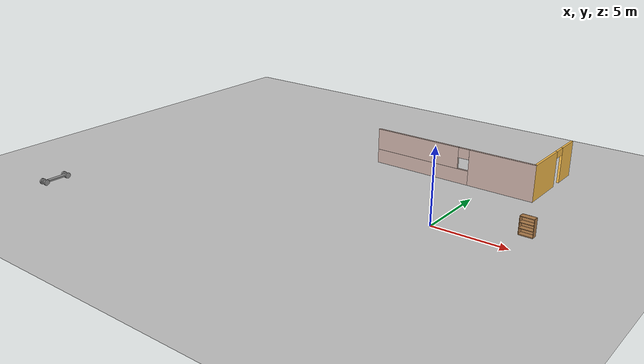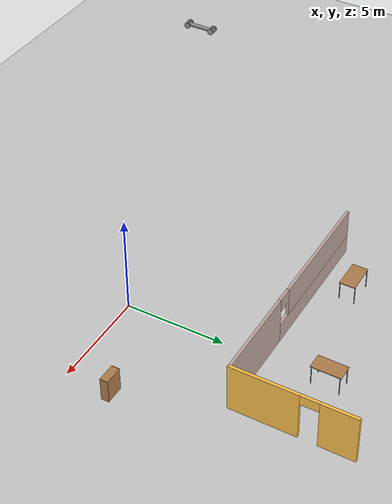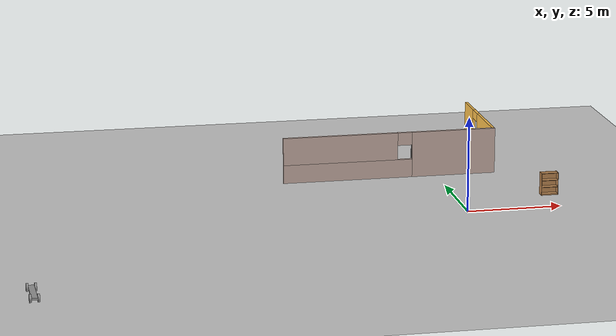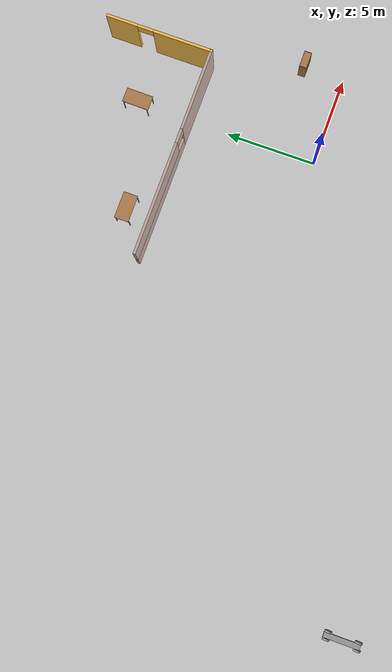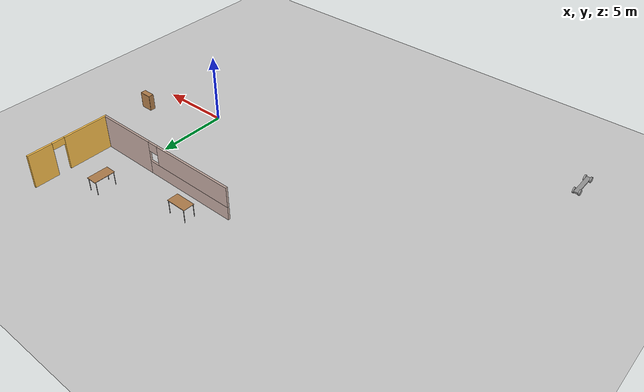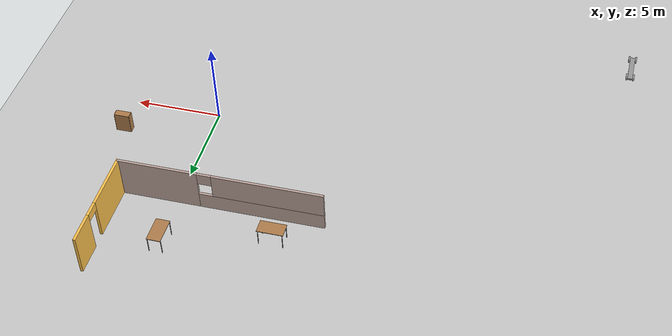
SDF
<sdf version="1.6">
 <world name="default">
  <model name="ground_plane">
   <static>1</static>
   <link name="link">
    <collision name="collision">
     <geometry><plane><normal>0 0 1</normal><size>100 100</size></plane></geometry>
     <surface>
      <contact><collide_bitmask>65535</collide_bitmask></contact>
      <friction><ode><mu>100</mu><mu2>50</mu2></ode></friction>
     </surface>
    </collision>
    <visual name="visual">
     <cast_shadows>0</cast_shadows>
     <geometry><plane><normal>0 0 1</normal><size>100 100</size></plane></geometry>
     <material>
      <script><uri>file://media/materials/scripts/gazebo.material</uri><name>Gazebo/Grey</name></script>
     </material>
    </visual>
   </link>
  </model>
  <model name="bookshelf">
   <static>1</static>
   <link name="link">
    <inertial><mass>1</mass></inertial>
    <collision name="back">
     <pose>0 0.005 0.6 0 -0 0</pose>
     <geometry><box><size>0.9 0.01 1.2</size></box></geometry>
    </collision>
    <visual name="visual1">
     <pose>0 0.005 0.6 0 -0 0</pose>
     <geometry><box><size>0.9 0.01 1.2</size></box></geometry>
     <material>
      <script><uri>file://media/materials/scripts/gazebo.material</uri><name>Gazebo/Wood</name></script>
     </material>
    </visual>
    <collision name="left_side">
     <pose>0.45 -0.195 0.6 0 -0 0</pose>
     <geometry><box><size>0.02 0.4 1.2</size></box></geometry>
    </collision>
    <visual name="visual2">
     <pose>0.45 -0.195 0.6 0 -0 0</pose>
     <geometry><box><size>0.02 0.4 1.2</size></box></geometry>
     <material>
      <script><uri>file://media/materials/scripts/gazebo.material</uri><name>Gazebo/Wood</name></script>
     </material>
    </visual>
    <collision name="right_side">
     <pose>-0.45 -0.195 0.6 0 -0 0</pose>
     <geometry><box><size>0.02 0.4 1.2</size></box></geometry>
    </collision>
    <visual name="visual3">
     <pose>-0.45 -0.195 0.6 0 -0 0</pose>
     <geometry><box><size>0.02 0.4 1.2</size></box></geometry>
     <material>
      <script><uri>file://media/materials/scripts/gazebo.material</uri><name>Gazebo/Wood</name></script>
     </material>
    </visual>
    <collision name="bottom">
     <pose>0 -0.195 0.03 0 -0 0</pose>
     <geometry><box><size>0.88 0.4 0.06</size></box></geometry>
    </collision>
    <visual name="visual4">
     <pose>0 -0.195 0.03 0 -0 0</pose>
     <geometry><box><size>0.88 0.4 0.06</size></box></geometry>
     <material>
      <script><uri>file://media/materials/scripts/gazebo.material</uri><name>Gazebo/Wood</name></script>
     </material>
    </visual>
    <collision name="top">
     <pose>0 -0.195 1.19 0 -0 0</pose>
     <geometry><box><size>0.88 0.4 0.02</size></box></geometry>
    </collision>
    <visual name="visual5">
     <pose>0 -0.195 1.19 0 -0 0</pose>
     <geometry><box><size>0.88 0.4 0.02</size></box></geometry>
     <material>
      <script><uri>file://media/materials/scripts/gazebo.material</uri><name>Gazebo/Wood</name></script>
     </material>
    </visual>
    <collision name="low_shelf">
     <pose>0 -0.195 0.43 0 -0 0</pose>
     <geometry><box><size>0.88 0.4 0.02</size></box></geometry>
    </collision>
    <visual name="visual6">
     <pose>0 -0.195 0.43 0 -0 0</pose>
     <geometry><box><size>0.88 0.4 0.02</size></box></geometry>
     <material>
      <script><uri>file://media/materials/scripts/gazebo.material</uri><name>Gazebo/Wood</name></script>
     </material>
    </visual>
    <collision name="high_shelf">
     <pose>0 -0.195 0.8 0 -0 0</pose>
     <geometry><box><size>0.88 0.4 0.02</size></box></geometry>
    </collision>
    <visual name="visual7">
     <pose>0 -0.195 0.8 0 -0 0</pose>
     <geometry><box><size>0.88 0.4 0.02</size></box></geometry>
     <material>
      <script><uri>file://media/materials/scripts/gazebo.material</uri><name>Gazebo/Wood</name></script>
     </material>
    </visual>
   </link>
   <pose>5.01452 2.49473 0 0 -0 0</pose>
  </model>
  <model name="office">
   <pose>-7.49516 -7.8361 0 0 -0 0</pose>
   <link name="Wall_134">
    <pose>10.7078 17.8581 0 0 -0 1.5708</pose>
    <visual name="Wall_134_Visual_0">
     <pose>-1.33185 0 1.25 0 -0 0</pose>
     <geometry><box><size>3.3363 0.15 2.5</size></box></geometry>
     <material>
      <script><uri>file://media/materials/scripts/gazebo.material</uri><name>Gazebo/Grey</name></script>
      <ambient>1 0.764706 0.305882 1</ambient>
     </material>
     <meta><layer>0</layer></meta>
    </visual>
    <collision name="Wall_134_Collision_0">
     <geometry><box><size>3.3363 0.15 2.5</size></box></geometry>
     <pose>-1.33185 0 1.25 0 -0 0</pose>
    </collision>
    <visual name="Wall_134_Visual_1">
     <pose>2.11815 0 1.25 0 -0 0</pose>
     <geometry><box><size>1.7637 0.15 2.5</size></box></geometry>
     <material>
      <script><uri>file://media/materials/scripts/gazebo.material</uri><name>Gazebo/Grey</name></script>
      <ambient>1 0.764706 0.305882 1</ambient>
     </material>
     <meta><layer>0</layer></meta>
    </visual>
    <collision name="Wall_134_Collision_1">
     <geometry><box><size>1.7637 0.15 2.5</size></box></geometry>
     <pose>2.11815 0 1.25 0 -0 0</pose>
    </collision>
    <visual name="Wall_134_Visual_2">
     <pose>0.786298 0 2.25 0 -0 0</pose>
     <geometry><box><size>0.9 0.15 0.5</size></box></geometry>
     <material>
      <script><uri>file://media/materials/scripts/gazebo.material</uri><name>Gazebo/Grey</name></script>
      <ambient>1 0.764706 0.305882 1</ambient>
     </material>
     <meta><layer>0</layer></meta>
    </visual>
    <collision name="Wall_134_Collision_2">
     <geometry><box><size>0.9 0.15 0.5</size></box></geometry>
     <pose>0.786298 0 2.25 0 -0 0</pose>
    </collision>
   </link>
   <link name="Wall_227">
    <pose>4.90779 14.9331 0 0 -0 3.14159</pose>
    <visual name="Wall_227_Visual_0">
     <pose>-3.55762 0 1.25 0 -0 0</pose>
     <geometry><box><size>4.63476 0.15 2.5</size></box></geometry>
     <material>
      <script><uri>file://media/materials/scripts/gazebo.material</uri><name>Gazebo/Grey</name></script>
      <ambient>0.760784 0.662745 0.627451 1</ambient>
     </material>
     <meta><layer>0</layer></meta>
    </visual>
    <collision name="Wall_227_Collision_0">
     <geometry><box><size>4.63476 0.15 2.5</size></box></geometry>
     <pose>-3.55762 0 1.25 0 -0 0</pose>
    </collision>
    <visual name="Wall_227_Visual_1">
     <pose>2.31738 0 0.5 0 -0 0</pose>
     <geometry><box><size>7.11524 0.15 1</size></box></geometry>
     <material>
      <script><uri>file://media/materials/scripts/gazebo.material</uri><name>Gazebo/Grey</name></script>
      <ambient>0.760784 0.662745 0.627451 1</ambient>
     </material>
     <meta><layer>0</layer></meta>
    </visual>
    <collision name="Wall_227_Collision_1">
     <geometry><box><size>7.11524 0.15 1</size></box></geometry>
     <pose>2.31738 0 0.5 0 -0 0</pose>
    </collision>
    <visual name="Wall_227_Visual_2">
     <pose>2.71738 0 1.75 0 -0 0</pose>
     <geometry><box><size>6.31524 0.15 1.5</size></box></geometry>
     <material>
      <script><uri>file://media/materials/scripts/gazebo.material</uri><name>Gazebo/Grey</name></script>
      <ambient>0.760784 0.662745 0.627451 1</ambient>
     </material>
     <meta><layer>0</layer></meta>
    </visual>
    <collision name="Wall_227_Collision_2">
     <geometry><box><size>6.31524 0.15 1.5</size></box></geometry>
     <pose>2.71738 0 1.75 0 -0 0</pose>
    </collision>
    <visual name="Wall_227_Visual_3">
     <pose>-0.840238 0 2.15 0 -0 0</pose>
     <geometry><box><size>0.8 0.15 0.7</size></box></geometry>
     <material>
      <script><uri>file://media/materials/scripts/gazebo.material</uri><name>Gazebo/Grey</name></script>
      <ambient>0.760784 0.662745 0.627451 1</ambient>
     </material>
     <meta><layer>0</layer></meta>
    </visual>
    <collision name="Wall_227_Collision_3">
     <geometry><box><size>0.8 0.15 0.7</size></box></geometry>
     <pose>-0.840238 0 2.15 0 -0 0</pose>
    </collision>
   </link>
   <static>1</static>
  </model>
  <model name="table_9">
   <static>1</static>
   <link name="link">
    <collision name="surface">
     <pose>0 0 1 0 -0 0</pose>
     <geometry><box><size>1.5 0.8 0.03</size></box></geometry>
     <surface><friction><ode><mu>0.6</mu><mu2>0.6</mu2></ode></friction></surface>
    </collision>
    <visual name="visual1">
     <pose>0 0 1 0 -0 0</pose>
     <geometry><box><size>1.5 0.8 0.03</size></box></geometry>
     <material>
      <script><uri>file://media/materials/scripts/gazebo.material</uri><name>Gazebo/Wood</name></script>
     </material>
    </visual>
    <collision name="front_left_leg">
     <pose>0.68 0.38 0.5 0 -0 0</pose>
     <geometry><cylinder><radius>0.02</radius><length>1</length></cylinder></geometry>
    </collision>
    <visual name="front_left_leg">
     <pose>0.68 0.38 0.5 0 -0 0</pose>
     <geometry><cylinder><radius>0.02</radius><length>1</length></cylinder></geometry>
     <material>
      <script><uri>file://media/materials/scripts/gazebo.material</uri><name>Gazebo/Grey</name></script>
     </material>
    </visual>
    <collision name="front_right_leg">
     <pose>0.68 -0.38 0.5 0 -0 0</pose>
     <geometry><cylinder><radius>0.02</radius><length>1</length></cylinder></geometry>
    </collision>
    <visual name="front_right_leg">
     <pose>0.68 -0.38 0.5 0 -0 0</pose>
     <geometry><cylinder><radius>0.02</radius><length>1</length></cylinder></geometry>
     <material>
      <script><uri>file://media/materials/scripts/gazebo.material</uri><name>Gazebo/Grey</name></script>
     </material>
    </visual>
    <collision name="back_right_leg">
     <pose>-0.68 -0.38 0.5 0 -0 0</pose>
     <geometry><cylinder><radius>0.02</radius><length>1</length></cylinder></geometry>
    </collision>
    <visual name="back_right_leg">
     <pose>-0.68 -0.38 0.5 0 -0 0</pose>
     <geometry><cylinder><radius>0.02</radius><length>1</length></cylinder></geometry>
     <material>
      <script><uri>file://media/materials/scripts/gazebo.material</uri><name>Gazebo/Grey</name></script>
     </material>
    </visual>
    <collision name="back_left_leg">
     <pose>-0.68 0.38 0.5 0 -0 0</pose>
     <geometry><cylinder><radius>0.02</radius><length>1</length></cylinder></geometry>
    </collision>
    <visual name="back_left_leg">
     <pose>-0.68 0.38 0.5 0 -0 0</pose>
     <geometry><cylinder><radius>0.02</radius><length>1</length></cylinder></geometry>
     <material>
      <script><uri>file://media/materials/scripts/gazebo.material</uri><name>Gazebo/Grey</name></script>
     </material>
    </visual>
   </link>
   <pose>-5.95431 8.66269 0 0 -0 0</pose>
  </model>
  <model name="table_10">
   <static>1</static>
   <link name="link">
    <collision name="surface">
     <pose>0 0 1 0 -0 0</pose>
     <geometry><box><size>1.5 0.8 0.03</size></box></geometry>
     <surface><friction><ode><mu>0.6</mu><mu2>0.6</mu2></ode></friction></surface>
    </collision>
    <visual name="visual1">
     <pose>0 0 1 0 -0 0</pose>
     <geometry><box><size>1.5 0.8 0.03</size></box></geometry>
     <material>
      <script><uri>file://media/materials/scripts/gazebo.material</uri><name>Gazebo/Wood</name></script>
     </material>
    </visual>
    <collision name="front_left_leg">
     <pose>0.68 0.38 0.5 0 -0 0</pose>
     <geometry><cylinder><radius>0.02</radius><length>1</length></cylinder></geometry>
    </collision>
    <visual name="front_left_leg">
     <pose>0.68 0.38 0.5 0 -0 0</pose>
     <geometry><cylinder><radius>0.02</radius><length>1</length></cylinder></geometry>
     <material>
      <script><uri>file://media/materials/scripts/gazebo.material</uri><name>Gazebo/Grey</name></script>
     </material>
    </visual>
    <collision name="front_right_leg">
     <pose>0.68 -0.38 0.5 0 -0 0</pose>
     <geometry><cylinder><radius>0.02</radius><length>1</length></cylinder></geometry>
    </collision>
    <visual name="front_right_leg">
     <pose>0.68 -0.38 0.5 0 -0 0</pose>
     <geometry><cylinder><radius>0.02</radius><length>1</length></cylinder></geometry>
     <material>
      <script><uri>file://media/materials/scripts/gazebo.material</uri><name>Gazebo/Grey</name></script>
     </material>
    </visual>
    <collision name="back_right_leg">
     <pose>-0.68 -0.38 0.5 0 -0 0</pose>
     <geometry><cylinder><radius>0.02</radius><length>1</length></cylinder></geometry>
    </collision>
    <visual name="back_right_leg">
     <pose>-0.68 -0.38 0.5 0 -0 0</pose>
     <geometry><cylinder><radius>0.02</radius><length>1</length></cylinder></geometry>
     <material>
      <script><uri>file://media/materials/scripts/gazebo.material</uri><name>Gazebo/Grey</name></script>
     </material>
    </visual>
    <collision name="back_left_leg">
     <pose>-0.68 0.38 0.5 0 -0 0</pose>
     <geometry><cylinder><radius>0.02</radius><length>1</length></cylinder></geometry>
    </collision>
    <visual name="back_left_leg">
     <pose>-0.68 0.38 0.5 0 -0 0</pose>
     <geometry><cylinder><radius>0.02</radius><length>1</length></cylinder></geometry>
     <material>
      <script><uri>file://media/materials/scripts/gazebo.material</uri><name>Gazebo/Grey</name></script>
     </material>
    </visual>
   </link>
   <pose>-0.111237 10.182 0 0 0 -1.58092</pose>
  </model>
  <model name="myrobot">
   <link name="link_0">
    <pose>-20.1793 -31.7509 0.74 0 -0 0</pose>
    <inertial>
     <mass>1</mass>
     <inertia>
      <ixx>0.166667</ixx>
      <ixy>0</ixy>
      <ixz>0</ixz>
      <iyy>0.166667</iyy>
      <iyz>0</iyz>
      <izz>0.166667</izz>
     </inertia>
    </inertial>
    <visual name="visual">
     <pose>0 0 -0.3 0 -0 0</pose>
     <geometry><box><size>0.3 2 0.1</size></box></geometry>
     <material>
      <lighting>1</lighting>
      <script><uri>file://media/materials/scripts/gazebo.material</uri><name>Gazebo/Grey</name></script>
      <shader type="pixel"><normal_map>__default__</normal_map></shader>
      <ambient>0.3 0.3 0.3 1</ambient>
      <diffuse>0.7 0.7 0.7 1</diffuse>
      <specular>0.01 0.01 0.01 1</specular>
      <emissive>0 0 0 1</emissive>
     </material>
    </visual>
    <collision name="collision">
     <pose>0 0 -0.3 0 -0 0</pose>
     <geometry><box><size>0.3 2 0.1</size></box></geometry>
     <surface>
      <friction>
       <ode><mu>1</mu><mu2>1</mu2><fdir1>0 0 0</fdir1><slip1>0</slip1><slip2>0</slip2></ode>
       <torsional>
        <coefficient>1</coefficient>
        <patch_radius>0</patch_radius>
        <surface_radius>0</surface_radius>
        <use_patch_radius>1</use_patch_radius>
        <ode><slip>0</slip></ode>
       </torsional>
      </friction>
      <bounce><restitution_coefficient>0</restitution_coefficient><threshold>1e+06</threshold></bounce>
      <contact>
       <collide_without_contact>0</collide_without_contact>
       <collide_without_contact_bitmask>1</collide_without_contact_bitmask>
       <collide_bitmask>1</collide_bitmask>
       <ode>
        <soft_cfm>0</soft_cfm>
        <soft_erp>0.2</soft_erp>
        <kp>1e+13</kp>
        <kd>1</kd>
        <max_vel>0.01</max_vel>
        <min_depth>0</min_depth>
       </ode>
       <bullet>
        <split_impulse>1</split_impulse>
        <split_impulse_penetration_threshold>-0.01</split_impulse_penetration_threshold>
        <soft_cfm>0</soft_cfm>
        <soft_erp>0.2</soft_erp>
        <kp>1e+13</kp>
        <kd>1</kd>
       </bullet>
      </contact>
     </surface>
    </collision>
   </link>
   <link name="link_1">
    <pose>-20.3793 -30.9528 0.44 1.5707 0 1.5707</pose>
    <inertial>
     <mass>1</mass>
     <inertia><ixx>0.145833</ixx><ixy>0</ixy><ixz>0</ixz><iyy>0.145833</iyy><iyz>0</iyz><izz>0.125</izz></inertia>
    </inertial>
    <visual name="visual">
     <geometry><cylinder><radius>0.2</radius><length>0.1</length></cylinder></geometry>
     <material>
      <lighting>1</lighting>
      <script><uri>file://media/materials/scripts/gazebo.material</uri><name>Gazebo/Grey</name></script>
      <shader type="pixel"><normal_map>__default__</normal_map></shader>
      <ambient>0.3 0.3 0.3 1</ambient>
      <diffuse>0.7 0.7 0.7 1</diffuse>
      <specular>0.01 0.01 0.01 1</specular>
      <emissive>0 0 0 1</emissive>
     </material>
    </visual>
    <collision name="collision">
     <geometry><cylinder><radius>0.2</radius><length>0.1</length></cylinder></geometry>
     <surface>
      <friction>
       <ode><mu>1</mu><mu2>1</mu2><fdir1>0 0 0</fdir1><slip1>0</slip1><slip2>0</slip2></ode>
       <torsional>
        <coefficient>1</coefficient>
        <patch_radius>0</patch_radius>
        <surface_radius>0</surface_radius>
        <use_patch_radius>1</use_patch_radius>
        <ode><slip>0</slip></ode>
       </torsional>
      </friction>
      <bounce><restitution_coefficient>0</restitution_coefficient><threshold>1e+06</threshold></bounce>
      <contact>
       <collide_without_contact>0</collide_without_contact>
       <collide_without_contact_bitmask>1</collide_without_contact_bitmask>
       <collide_bitmask>1</collide_bitmask>
       <ode>
        <soft_cfm>0</soft_cfm>
        <soft_erp>0.2</soft_erp>
        <kp>1e+13</kp>
        <kd>1</kd>
        <max_vel>0.01</max_vel>
        <min_depth>0</min_depth>
       </ode>
       <bullet>
        <split_impulse>1</split_impulse>
        <split_impulse_penetration_threshold>-0.01</split_impulse_penetration_threshold>
        <soft_cfm>0</soft_cfm>
        <soft_erp>0.2</soft_erp>
        <kp>1e+13</kp>
        <kd>1</kd>
       </bullet>
      </contact>
     </surface>
    </collision>
   </link>
   <link name="link_1_clone">
    <pose>-19.9793 -30.9509 0.44 1.5707 0 1.5707</pose>
    <inertial>
     <mass>1</mass>
     <inertia><ixx>0.145833</ixx><ixy>0</ixy><ixz>0</ixz><iyy>0.145833</iyy><iyz>0</iyz><izz>0.125</izz></inertia>
    </inertial>
    <visual name="visual">
     <geometry><cylinder><radius>0.2</radius><length>0.1</length></cylinder></geometry>
     <material>
      <lighting>1</lighting>
      <script><uri>file://media/materials/scripts/gazebo.material</uri><name>Gazebo/Grey</name></script>
      <shader type="pixel"><normal_map>__default__</normal_map></shader>
      <ambient>0.3 0.3 0.3 1</ambient>
      <diffuse>0.7 0.7 0.7 1</diffuse>
      <specular>0.01 0.01 0.01 1</specular>
      <emissive>0 0 0 1</emissive>
     </material>
    </visual>
    <collision name="collision">
     <geometry><cylinder><radius>0.2</radius><length>0.1</length></cylinder></geometry>
     <surface>
      <friction>
       <ode><mu>1</mu><mu2>1</mu2><fdir1>0 0 0</fdir1><slip1>0</slip1><slip2>0</slip2></ode>
       <torsional>
        <coefficient>1</coefficient>
        <patch_radius>0</patch_radius>
        <surface_radius>0</surface_radius>
        <use_patch_radius>1</use_patch_radius>
        <ode><slip>0</slip></ode>
       </torsional>
      </friction>
      <bounce><restitution_coefficient>0</restitution_coefficient><threshold>1e+06</threshold></bounce>
      <contact>
       <collide_without_contact>0</collide_without_contact>
       <collide_without_contact_bitmask>1</collide_without_contact_bitmask>
       <collide_bitmask>1</collide_bitmask>
       <ode>
        <soft_cfm>0</soft_cfm>
        <soft_erp>0.2</soft_erp>
        <kp>1e+13</kp>
        <kd>1</kd>
        <max_vel>0.01</max_vel>
        <min_depth>0</min_depth>
       </ode>
       <bullet>
        <split_impulse>1</split_impulse>
        <split_impulse_penetration_threshold>-0.01</split_impulse_penetration_threshold>
        <soft_cfm>0</soft_cfm>
        <soft_erp>0.2</soft_erp>
        <kp>1e+13</kp>
        <kd>1</kd>
       </bullet>
      </contact>
     </surface>
    </collision>
   </link>
   <link name="link_1_clone_0">
    <pose>-20.3793 -32.6307 0.44 1.5707 0 1.5707</pose>
    <inertial>
     <mass>1</mass>
     <inertia><ixx>0.145833</ixx><ixy>0</ixy><ixz>0</ixz><iyy>0.145833</iyy><iyz>0</iyz><izz>0.125</izz></inertia>
    </inertial>
    <visual name="visual">
     <geometry><cylinder><radius>0.2</radius><length>0.1</length></cylinder></geometry>
     <material>
      <lighting>1</lighting>
      <script><uri>file://media/materials/scripts/gazebo.material</uri><name>Gazebo/Grey</name></script>
      <shader type="pixel"><normal_map>__default__</normal_map></shader>
      <ambient>0.3 0.3 0.3 1</ambient>
      <diffuse>0.7 0.7 0.7 1</diffuse>
      <specular>0.01 0.01 0.01 1</specular>
      <emissive>0 0 0 1</emissive>
     </material>
    </visual>
    <collision name="collision">
     <geometry><cylinder><radius>0.2</radius><length>0.1</length></cylinder></geometry>
     <surface>
      <friction>
       <ode><mu>1</mu><mu2>1</mu2><fdir1>0 0 0</fdir1><slip1>0</slip1><slip2>0</slip2></ode>
       <torsional>
        <coefficient>1</coefficient>
        <patch_radius>0</patch_radius>
        <surface_radius>0</surface_radius>
        <use_patch_radius>1</use_patch_radius>
        <ode><slip>0</slip></ode>
       </torsional>
      </friction>
      <bounce><restitution_coefficient>0</restitution_coefficient><threshold>1e+06</threshold></bounce>
      <contact>
       <collide_without_contact>0</collide_without_contact>
       <collide_without_contact_bitmask>1</collide_without_contact_bitmask>
       <collide_bitmask>1</collide_bitmask>
       <ode>
        <soft_cfm>0</soft_cfm>
        <soft_erp>0.2</soft_erp>
        <kp>1e+13</kp>
        <kd>1</kd>
        <max_vel>0.01</max_vel>
        <min_depth>0</min_depth>
       </ode>
       <bullet>
        <split_impulse>1</split_impulse>
        <split_impulse_penetration_threshold>-0.01</split_impulse_penetration_threshold>
        <soft_cfm>0</soft_cfm>
        <soft_erp>0.2</soft_erp>
        <kp>1e+13</kp>
        <kd>1</kd>
       </bullet>
      </contact>
     </surface>
    </collision>
   </link>
   <link name="link_1_clone_1">
    <pose>-19.9793 -32.6069 0.44 1.5707 0 1.5707</pose>
    <inertial>
     <mass>1</mass>
     <inertia><ixx>0.145833</ixx><ixy>0</ixy><ixz>0</ixz><iyy>0.145833</iyy><iyz>0</iyz><izz>0.125</izz></inertia>
    </inertial>
    <visual name="visual">
     <geometry><cylinder><radius>0.2</radius><length>0.1</length></cylinder></geometry>
     <material>
      <lighting>1</lighting>
      <script><uri>file://media/materials/scripts/gazebo.material</uri><name>Gazebo/Grey</name></script>
      <shader type="pixel"><normal_map>__default__</normal_map></shader>
      <ambient>0.3 0.3 0.3 1</ambient>
      <diffuse>0.7 0.7 0.7 1</diffuse>
      <specular>0.01 0.01 0.01 1</specular>
      <emissive>0 0 0 1</emissive>
     </material>
    </visual>
    <collision name="collision">
     <geometry><cylinder><radius>0.2</radius><length>0.1</length></cylinder></geometry>
     <surface>
      <friction>
       <ode><mu>1</mu><mu2>1</mu2><fdir1>0 0 0</fdir1><slip1>0</slip1><slip2>0</slip2></ode>
       <torsional>
        <coefficient>1</coefficient>
        <patch_radius>0</patch_radius>
        <surface_radius>0</surface_radius>
        <use_patch_radius>1</use_patch_radius>
        <ode><slip>0</slip></ode>
       </torsional>
      </friction>
      <bounce><restitution_coefficient>0</restitution_coefficient><threshold>1e+06</threshold></bounce>
      <contact>
       <collide_without_contact>0</collide_without_contact>
       <collide_without_contact_bitmask>1</collide_without_contact_bitmask>
       <collide_bitmask>1</collide_bitmask>
       <ode>
        <soft_cfm>0</soft_cfm>
        <soft_erp>0.2</soft_erp>
        <kp>1e+13</kp>
        <kd>1</kd>
        <max_vel>0.01</max_vel>
        <min_depth>0</min_depth>
       </ode>
       <bullet>
        <split_impulse>1</split_impulse>
        <split_impulse_penetration_threshold>-0.01</split_impulse_penetration_threshold>
        <soft_cfm>0</soft_cfm>
        <soft_erp>0.2</soft_erp>
        <kp>1e+13</kp>
        <kd>1</kd>
       </bullet>
      </contact>
     </surface>
    </collision>
   </link>
   <joint name="link_0_JOINT_1" type="revolute">
    <parent>link_0</parent>
    <child>link_1</child>
    <axis>
     <xyz>1 0 0</xyz>
     <use_parent_model_frame>0</use_parent_model_frame>
     <limit>
      <lower>-1.79769e+308</lower>
      <upper>1.79769e+308</upper>
      <effort>-1</effort>
      <velocity>-1</velocity>
     </limit>
     <dynamics>
      <spring_reference>0</spring_reference>
      <spring_stiffness>0</spring_stiffness>
      <damping>0</damping>
     </dynamics>
    </axis>
    <physics>
     <ode><limit><cfm>0</cfm><erp>0.2</erp></limit><suspension><cfm>0</cfm><erp>0.2</erp></suspension></ode>
    </physics>
   </joint>
   <joint name="link_0_JOINT_2" type="revolute">
    <parent>link_0</parent>
    <child>link_1_clone</child>
    <axis>
     <xyz>1 0 0</xyz>
     <use_parent_model_frame>0</use_parent_model_frame>
     <limit>
      <lower>-1.79769e+308</lower>
      <upper>1.79769e+308</upper>
      <effort>-1</effort>
      <velocity>-1</velocity>
     </limit>
     <dynamics>
      <spring_reference>0</spring_reference>
      <spring_stiffness>0</spring_stiffness>
      <damping>0</damping>
     </dynamics>
    </axis>
    <physics>
     <ode><limit><cfm>0</cfm><erp>0.2</erp></limit><suspension><cfm>0</cfm><erp>0.2</erp></suspension></ode>
    </physics>
   </joint>
   <joint name="link_0_JOINT_4" type="revolute">
    <parent>link_0</parent>
    <child>link_1_clone_1</child>
    <axis>
     <xyz>1 0 0</xyz>
     <use_parent_model_frame>0</use_parent_model_frame>
     <limit>
      <lower>-1.79769e+308</lower>
      <upper>1.79769e+308</upper>
      <effort>-1</effort>
      <velocity>-1</velocity>
     </limit>
     <dynamics>
      <spring_reference>0</spring_reference>
      <spring_stiffness>0</spring_stiffness>
      <damping>0</damping>
     </dynamics>
    </axis>
    <physics>
     <ode><limit><cfm>0</cfm><erp>0.2</erp></limit><suspension><cfm>0</cfm><erp>0.2</erp></suspension></ode>
    </physics>
   </joint>
   <joint name="link_0_JOINT_5" type="revolute">
    <parent>link_0</parent>
    <child>link_1_clone_0</child>
    <axis>
     <xyz>1 0 0</xyz>
     <use_parent_model_frame>0</use_parent_model_frame>
     <limit>
      <lower>-1.79769e+308</lower>
      <upper>1.79769e+308</upper>
      <effort>-1</effort>
      <velocity>-1</velocity>
     </limit>
     <dynamics>
      <spring_reference>0</spring_reference>
      <spring_stiffness>0</spring_stiffness>
      <damping>0</damping>
     </dynamics>
    </axis>
    <physics>
     <ode><limit><cfm>0</cfm><erp>0.2</erp></limit><suspension><cfm>0</cfm><erp>0.2</erp></suspension></ode>
    </physics>
   </joint>
   <static>0</static>
   <pose>-3.27755 22.0785 -0.240043 0 2e-06 -5.8e-05</pose>
  </model>
 </world>
</sdf>
